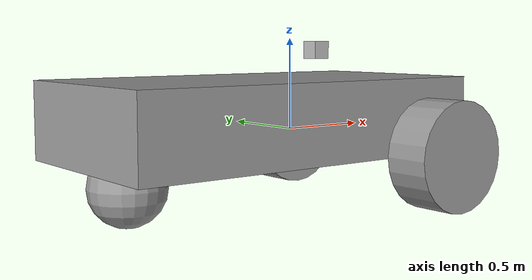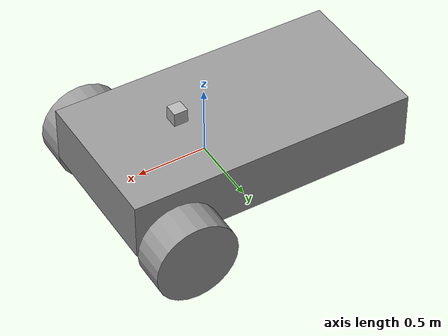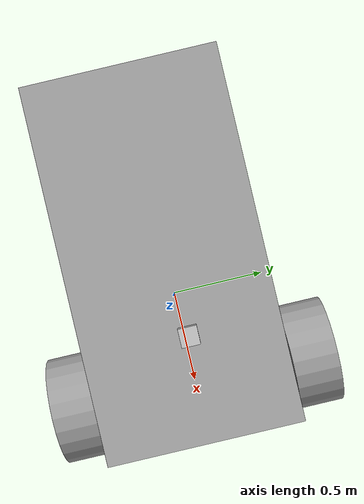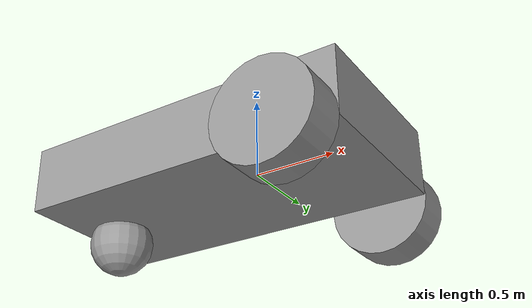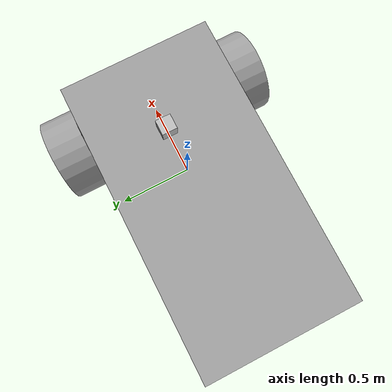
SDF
<?xml version='1.0'?>
<sdf version='1.6'>
  <model name='my_reactive_robot'>
    <link name='link_chassis'>
      <inertial>
        <mass>0.93551</mass>
        <inertia>
          <ixx>0.104892</ixx>
          <ixy>0</ixy>
          <ixz>0</ixz>
          <iyy>0.349984</iyy>
          <iyz>0</iyz>
          <izz>0.427911</izz>
        </inertia>
        <pose frame=''>0 0 0.4 0 -0 0</pose>
      </inertial>
      <pose frame=''>-0.224175 -0.01156 0.078824 0 -0 0</pose>
      <gravity>1</gravity>
      <self_collide>0</self_collide>
      <kinematic>0</kinematic>
      <enable_wind>0</enable_wind>
      <visual name='visual'>
        <pose frame=''>0 0 0 0 -0 0</pose>
        <geometry>
          <box>
            <size>2.07759 1.08283 0.415866</size>
          </box>
        </geometry>
        <material>
          <lighting>1</lighting>
          <script>
            <uri>file://media/materials/scripts/gazebo.material</uri>
            <name>Gazebo/Grey</name>
          </script>
          <shader type='vertex'>
            <normal_map>__default__</normal_map>
          </shader>
          <ambient>0.3 0.3 0.3 1</ambient>
          <diffuse>0.7 0.7 0.7 1</diffuse>
          <specular>0.01 0.01 0.01 1</specular>
          <emissive>0 0 0 1</emissive>
        </material>
        <transparency>0</transparency>
        <cast_shadows>1</cast_shadows>
      </visual>
      <collision name='collision'>
        <laser_retro>0</laser_retro>
        <max_contacts>10</max_contacts>
        <pose frame=''>0 0 0 0 -0 0</pose>
        <geometry>
          <box>
            <size>2.07759 1.08283 0.415866</size>
          </box>
        </geometry>
        <surface>
          <friction>
            <ode>
              <mu>1</mu>
              <mu2>1</mu2>
              <fdir1>0 0 0</fdir1>
              <slip1>0</slip1>
              <slip2>0</slip2>
            </ode>
            <torsional>
              <coefficient>1</coefficient>
              <patch_radius>0</patch_radius>
              <surface_radius>0</surface_radius>
              <use_patch_radius>1</use_patch_radius>
              <ode>
                <slip>0</slip>
              </ode>
            </torsional>
          </friction>
          <bounce>
            <restitution_coefficient>0</restitution_coefficient>
            <threshold>1e+06</threshold>
          </bounce>
          <contact>
            <collide_without_contact>0</collide_without_contact>
            <collide_without_contact_bitmask>1</collide_without_contact_bitmask>
            <collide_bitmask>1</collide_bitmask>
            <ode>
              <soft_cfm>0</soft_cfm>
              <soft_erp>0.2</soft_erp>
              <kp>1e+13</kp>
              <kd>1</kd>
              <max_vel>0.01</max_vel>
              <min_depth>0</min_depth>
            </ode>
            <bullet>
              <split_impulse>1</split_impulse>
              <split_impulse_penetration_threshold>-0.01</split_impulse_penetration_threshold>
              <soft_cfm>0</soft_cfm>
              <soft_erp>0.2</soft_erp>
              <kp>1e+13</kp>
              <kd>1</kd>
            </bullet>
          </contact>
        </surface>
      </collision>
    </link>
    <link name='link_left_wheel'>
      <inertial>
        <mass>1</mass>
        <inertia>
          <ixx>0.145833</ixx>
          <ixy>0</ixy>
          <ixz>0</ixz>
          <iyy>0.145833</iyy>
          <iyz>0</iyz>
          <izz>0.125</izz>
        </inertia>
        <pose frame=''>0 0 0 0 -0 0</pose>
      </inertial>
      <pose frame=''>0.514618 0.669883 -0.121176 1.5707 -0 0</pose>
      <gravity>1</gravity>
      <self_collide>0</self_collide>
      <kinematic>0</kinematic>
      <enable_wind>0</enable_wind>
      <visual name='visual'>
        <pose frame=''>0 0 0 0 -0 0</pose>
        <geometry>
          <cylinder>
            <radius>0.3</radius>
            <length>0.25</length>
          </cylinder>
        </geometry>
        <material>
          <lighting>1</lighting>
          <script>
            <uri>file://media/materials/scripts/gazebo.material</uri>
            <name>Gazebo/Grey</name>
          </script>
          <shader type='vertex'>
            <normal_map>__default__</normal_map>
          </shader>
          <ambient>0.3 0.3 0.3 1</ambient>
          <diffuse>0.7 0.7 0.7 1</diffuse>
          <specular>0.01 0.01 0.01 1</specular>
          <emissive>0 0 0 1</emissive>
        </material>
        <transparency>0</transparency>
        <cast_shadows>1</cast_shadows>
      </visual>
      <collision name='collision'>
        <laser_retro>0</laser_retro>
        <max_contacts>10</max_contacts>
        <pose frame=''>0 0 0 0 -0 0</pose>
        <geometry>
          <cylinder>
            <radius>0.3</radius>
            <length>0.25</length>
          </cylinder>
        </geometry>
        <surface>
          <friction>
            <ode>
              <mu>1</mu>
              <mu2>1</mu2>
              <fdir1>0 0 0</fdir1>
              <slip1>0</slip1>
              <slip2>0</slip2>
            </ode>
            <torsional>
              <coefficient>1</coefficient>
              <patch_radius>0</patch_radius>
              <surface_radius>0</surface_radius>
              <use_patch_radius>1</use_patch_radius>
              <ode>
                <slip>0</slip>
              </ode>
            </torsional>
          </friction>
          <bounce>
            <restitution_coefficient>0</restitution_coefficient>
            <threshold>1e+06</threshold>
          </bounce>
          <contact>
            <collide_without_contact>0</collide_without_contact>
            <collide_without_contact_bitmask>1</collide_without_contact_bitmask>
            <collide_bitmask>1</collide_bitmask>
            <ode>
              <soft_cfm>0</soft_cfm>
              <soft_erp>0.2</soft_erp>
              <kp>1e+13</kp>
              <kd>1</kd>
              <max_vel>0.01</max_vel>
              <min_depth>0</min_depth>
            </ode>
            <bullet>
              <split_impulse>1</split_impulse>
              <split_impulse_penetration_threshold>-0.01</split_impulse_penetration_threshold>
              <soft_cfm>0</soft_cfm>
              <soft_erp>0.2</soft_erp>
              <kp>1e+13</kp>
              <kd>1</kd>
            </bullet>
          </contact>
        </surface>
      </collision>
    </link>
    <link name='link_right_wheel'>
      <inertial>
        <mass>1</mass>
        <inertia>
          <ixx>0.145833</ixx>
          <ixy>0</ixy>
          <ixz>0</ixz>
          <iyy>0.145833</iyy>
          <iyz>0</iyz>
          <izz>0.125</izz>
        </inertia>
        <pose frame=''>0 0 0 0 -0 0</pose>
      </inertial>
      <pose frame=''>0.514618 -0.678003 -0.121176 1.5707 -0 0</pose>
      <gravity>1</gravity>
      <self_collide>0</self_collide>
      <kinematic>0</kinematic>
      <enable_wind>0</enable_wind>
      <visual name='visual'>
        <pose frame=''>0 0 0 0 -0 0</pose>
        <geometry>
          <cylinder>
            <radius>0.3</radius>
            <length>0.25</length>
          </cylinder>
        </geometry>
        <material>
          <lighting>1</lighting>
          <script>
            <uri>file://media/materials/scripts/gazebo.material</uri>
            <name>Gazebo/Grey</name>
          </script>
          <shader type='vertex'>
            <normal_map>__default__</normal_map>
          </shader>
          <ambient>0.3 0.3 0.3 1</ambient>
          <diffuse>0.7 0.7 0.7 1</diffuse>
          <specular>0.01 0.01 0.01 1</specular>
          <emissive>0 0 0 1</emissive>
        </material>
        <transparency>0</transparency>
        <cast_shadows>1</cast_shadows>
      </visual>
      <collision name='collision'>
        <laser_retro>0</laser_retro>
        <max_contacts>10</max_contacts>
        <pose frame=''>0 0 0 0 -0 0</pose>
        <geometry>
          <cylinder>
            <radius>0.3</radius>
            <length>0.25</length>
          </cylinder>
        </geometry>
        <surface>
          <friction>
            <ode>
              <mu>1</mu>
              <mu2>1</mu2>
              <fdir1>0 0 0</fdir1>
              <slip1>0</slip1>
              <slip2>0</slip2>
            </ode>
            <torsional>
              <coefficient>1</coefficient>
              <patch_radius>0</patch_radius>
              <surface_radius>0</surface_radius>
              <use_patch_radius>1</use_patch_radius>
              <ode>
                <slip>0</slip>
              </ode>
            </torsional>
          </friction>
          <bounce>
            <restitution_coefficient>0</restitution_coefficient>
            <threshold>1e+06</threshold>
          </bounce>
          <contact>
            <collide_without_contact>0</collide_without_contact>
            <collide_without_contact_bitmask>1</collide_without_contact_bitmask>
            <collide_bitmask>1</collide_bitmask>
            <ode>
              <soft_cfm>0</soft_cfm>
              <soft_erp>0.2</soft_erp>
              <kp>1e+13</kp>
              <kd>1</kd>
              <max_vel>0.01</max_vel>
              <min_depth>0</min_depth>
            </ode>
            <bullet>
              <split_impulse>1</split_impulse>
              <split_impulse_penetration_threshold>-0.01</split_impulse_penetration_threshold>
              <soft_cfm>0</soft_cfm>
              <soft_erp>0.2</soft_erp>
              <kp>1e+13</kp>
              <kd>1</kd>
            </bullet>
          </contact>
        </surface>
      </collision>
    </link>
    <link name='link_caster_wheel'>
      <inertial>
        <mass>1</mass>
        <inertia>
          <ixx>0.1</ixx>
          <ixy>0</ixy>
          <ixz>0</ixz>
          <iyy>0.1</iyy>
          <iyz>0</iyz>
          <izz>0.1</izz>
        </inertia>
        <pose frame=''>0 0 0 0 -0 0</pose>
      </inertial>
      <pose frame=''>-1.02418 -0.01156 -0.221176 0 -0 0</pose>
      <gravity>1</gravity>
      <self_collide>0</self_collide>
      <kinematic>0</kinematic>
      <enable_wind>0</enable_wind>
      <visual name='visual'>
        <pose frame=''>0 0 0 0 -0 0</pose>
        <geometry>
          <sphere>
            <radius>0.2</radius>
          </sphere>
        </geometry>
        <material>
          <lighting>1</lighting>
          <script>
            <uri>file://media/materials/scripts/gazebo.material</uri>
            <name>Gazebo/Grey</name>
          </script>
          <shader type='vertex'>
            <normal_map>__default__</normal_map>
          </shader>
          <ambient>0.3 0.3 0.3 1</ambient>
          <diffuse>0.7 0.7 0.7 1</diffuse>
          <specular>0.01 0.01 0.01 1</specular>
          <emissive>0 0 0 1</emissive>
        </material>
        <transparency>0</transparency>
        <cast_shadows>1</cast_shadows>
      </visual>
      <collision name='collision'>
        <laser_retro>0</laser_retro>
        <max_contacts>10</max_contacts>
        <pose frame=''>0 0 0 0 -0 0</pose>
        <geometry>
          <sphere>
            <radius>0.2</radius>
          </sphere>
        </geometry>
        <surface>
          <friction>
            <ode>
              <mu>1</mu>
              <mu2>1</mu2>
              <fdir1>0 0 0</fdir1>
              <slip1>0</slip1>
              <slip2>0</slip2>
            </ode>
            <torsional>
              <coefficient>1</coefficient>
              <patch_radius>0</patch_radius>
              <surface_radius>0</surface_radius>
              <use_patch_radius>1</use_patch_radius>
              <ode>
                <slip>0</slip>
              </ode>
            </torsional>
          </friction>
          <bounce>
            <restitution_coefficient>0</restitution_coefficient>
            <threshold>1e+06</threshold>
          </bounce>
          <contact>
            <collide_without_contact>0</collide_without_contact>
            <collide_without_contact_bitmask>1</collide_without_contact_bitmask>
            <collide_bitmask>1</collide_bitmask>
            <ode>
              <soft_cfm>0</soft_cfm>
              <soft_erp>0.2</soft_erp>
              <kp>1e+13</kp>
              <kd>1</kd>
              <max_vel>0.01</max_vel>
              <min_depth>0</min_depth>
            </ode>
            <bullet>
              <split_impulse>1</split_impulse>
              <split_impulse_penetration_threshold>-0.01</split_impulse_penetration_threshold>
              <soft_cfm>0</soft_cfm>
              <soft_erp>0.2</soft_erp>
              <kp>1e+13</kp>
              <kd>1</kd>
            </bullet>
          </contact>
        </surface>
      </collision>
    </link>
    <model name='depth_camera'>
      <link name='link'>
        <pose frame=''>0 0 0.05 0 -0 0</pose>
        <inertial>
          <mass>0.1</mass>
          <inertia>
            <ixx>0.000166667</ixx>
            <iyy>0.000166667</iyy>
            <izz>0.000166667</izz>
            <ixy>0</ixy>
            <ixz>0</ixz>
            <iyz>0</iyz>
          </inertia>
        </inertial>
        <collision name='collision'>
          <geometry>
            <box>
              <size>0.1 0.1 0.1</size>
            </box>
          </geometry>
        </collision>
        <visual name='visual'>
          <geometry>
            <box>
              <size>0.1 0.1 0.1</size>
            </box>
          </geometry>
        </visual>
        <sensor name='camera' type='depth'>
          <camera name='__default__'>
            <horizontal_fov>1.047</horizontal_fov>
            <image>
              <width>320</width>
              <height>240</height>
            </image>
            <clip>
              <near>0.1</near>
              <far>100</far>
            </clip>
          </camera>
          <always_on>1</always_on>
          <update_rate>30</update_rate>
          <visualize>1</visualize>
        </sensor>
      </link>
      <pose frame=''>0.219114 0.03124 0.384705 0 -0 0</pose>
    </model>
    <joint name='link_chassis_JOINT_0' type='revolute'>
      <parent>link_chassis</parent>
      <child>link_left_wheel</child>
      <pose frame=''>0 0 0 0 -0 0</pose>
      <axis>
        <xyz>0 0 1</xyz>
        <use_parent_model_frame>0</use_parent_model_frame>
        <limit>
          <lower>-1.79769e+308</lower>
          <upper>1.79769e+308</upper>
          <effort>-1</effort>
          <velocity>-1</velocity>
        </limit>
        <dynamics>
          <spring_reference>0</spring_reference>
          <spring_stiffness>0</spring_stiffness>
          <damping>0</damping>
          <friction>0</friction>
        </dynamics>
      </axis>
      <physics>
        <ode>
          <limit>
            <cfm>0</cfm>
            <erp>0.2</erp>
          </limit>
          <suspension>
            <cfm>0</cfm>
            <erp>0.2</erp>
          </suspension>
        </ode>
      </physics>
    </joint>
    <joint name='link_chassis_JOINT_1' type='revolute'>
      <parent>link_chassis</parent>
      <child>link_right_wheel</child>
      <pose frame=''>0 0 0 0 -0 0</pose>
      <axis>
        <xyz>0 0 1</xyz>
        <use_parent_model_frame>0</use_parent_model_frame>
        <limit>
          <lower>-1.79769e+308</lower>
          <upper>1.79769e+308</upper>
          <effort>-1</effort>
          <velocity>-1</velocity>
        </limit>
        <dynamics>
          <spring_reference>0</spring_reference>
          <spring_stiffness>0</spring_stiffness>
          <damping>0</damping>
        </dynamics>
      </axis>
      <physics>
        <ode>
          <limit>
            <cfm>0</cfm>
            <erp>0.2</erp>
          </limit>
          <suspension>
            <cfm>0</cfm>
            <erp>0.2</erp>
          </suspension>
        </ode>
      </physics>
    </joint>
    <joint name='link_chassis_JOINT_2' type='ball'>
      <parent>link_chassis</parent>
      <child>link_caster_wheel</child>
      <pose frame=''>0 0 0 0 -0 0</pose>
      <physics>
        <ode>
          <limit>
            <cfm>0</cfm>
            <erp>0.2</erp>
          </limit>
          <suspension>
            <cfm>0</cfm>
            <erp>0.2</erp>
          </suspension>
        </ode>
      </physics>
    </joint>
    <joint name='link_chassis_JOINT_3' type='fixed'>
      <parent>link_chassis</parent>
      <child>depth_camera::link</child>
      <pose frame=''>0 0 0 0 -0 0</pose>
      <physics>
        <ode>
          <limit>
            <cfm>0</cfm>
            <erp>0.2</erp>
          </limit>
          <suspension>
            <cfm>0</cfm>
            <erp>0.2</erp>
          </suspension>
        </ode>
      </physics>
    </joint>
    <static>0</static>
    <allow_auto_disable>1</allow_auto_disable>
  </model>
</sdf>
